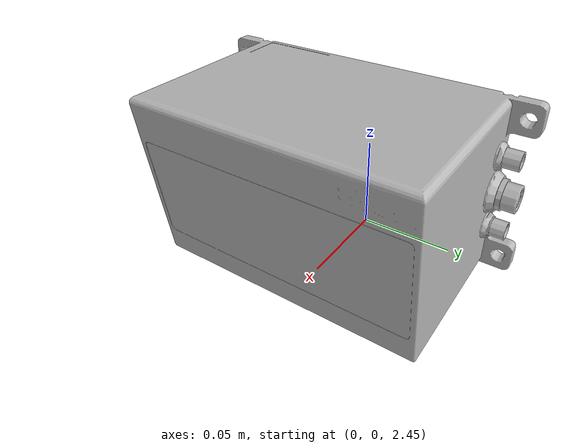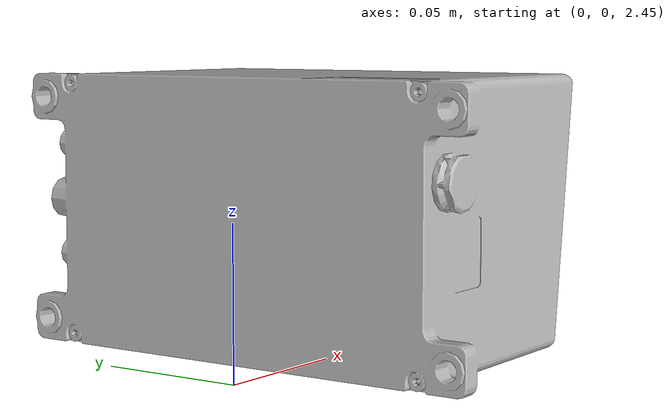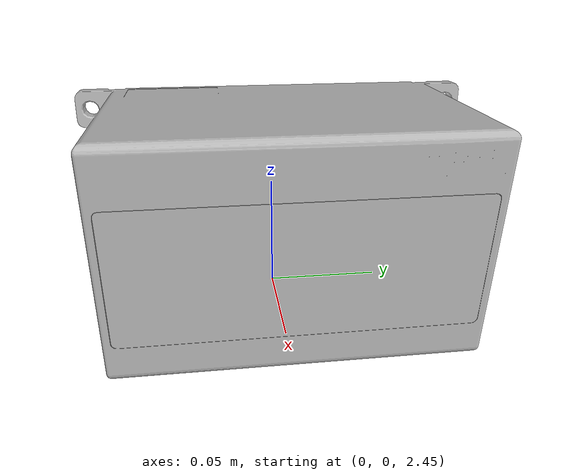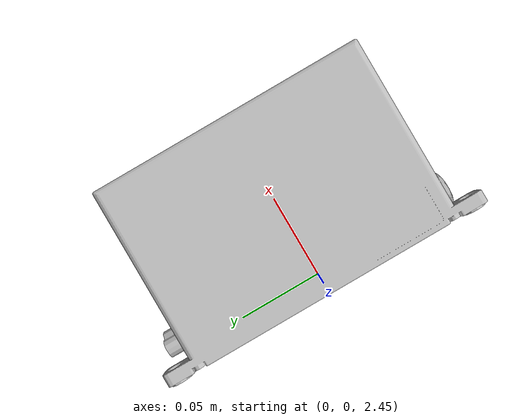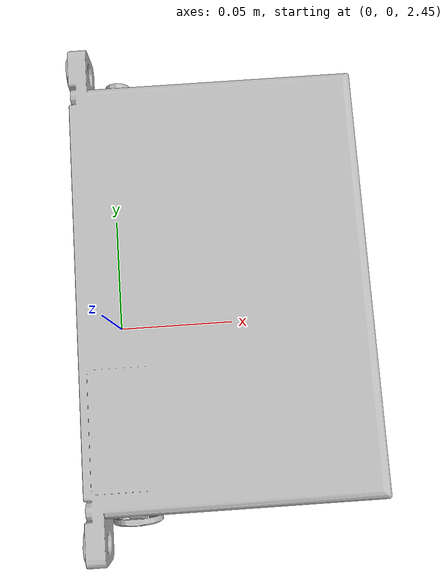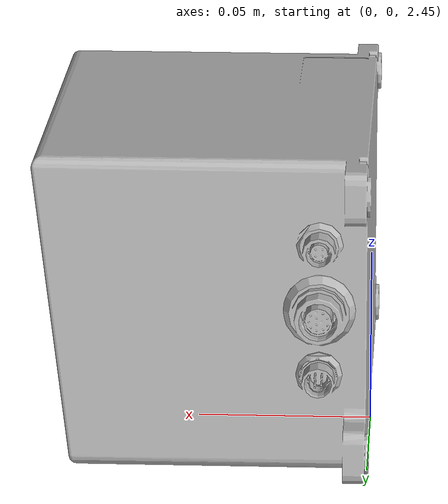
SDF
<?xml version="1.0"?>
<sdf version="1.4">
  <model name="IBEO1">
    <pose>0 0 2.5 0 0 0 </pose>
    <link name="link">
      <gravity>0</gravity>
      <visual name='visual'>
	<pose>0 0 0 1.57 0 1.57 </pose>
	<geometry>
	  <mesh>
	    <uri>model://IBEO/meshes/IBEO.STL </uri>
	  </mesh>
	</geometry>
      </visual>

      <sensor name='ibeo-t1' type='gpu_ray'>
	<pose>0.01 0.04 0.005 0 -0.014 0</pose>
	<ray>
	  <scan>
	    <horizontal>
	      <samples>760</samples>
	      <resolution>1</resolution>
	      <min_angle>-1.04719</min_angle>
	      <max_angle>0.69813</max_angle>
	    </horizontal>
	  </scan>
	  <range>
	    <min>0.3</min>
	    <max>35</max>
	    <resolution>1</resolution>
	  </range>

	</ray>
	<always_on>1</always_on>
	<update_rate>1000</update_rate>
	<visualize>1</visualize>
      </sensor>

      <sensor name='ibeo-t2' type='gpu_ray'>
	<pose>0.01 0.04 0.006 0 -0.028 0</pose>
	<ray>
	  <scan>
	    <horizontal>
	      <samples>760</samples>
	      <resolution>1</resolution>
	      <min_angle>-1.04719</min_angle>
	      <max_angle>0.69813</max_angle>
	    </horizontal>
	  </scan>
	  <range>
	    <min>0.3</min>
	    <max>35</max>
	    <resolution>1</resolution>
	  </range>

	</ray>
	<always_on>1</always_on>
	<update_rate>1000</update_rate>
	<visualize>1</visualize>
      </sensor>

      <sensor name='ibeo-b1' type='gpu_ray'>
	<pose>0.01 0.04 0.007 0 0.014 0</pose>
	<ray>
	  <scan>
	    <horizontal>
	      <samples>760</samples>
	      <resolution>1</resolution>
	      <min_angle>-0.872661</min_angle>
	      <max_angle>0.872661</max_angle>
	    </horizontal>
	  </scan>
	  <range>
	    <min>0.3</min>
	    <max>35</max>
	    <resolution>1</resolution>
	  </range>
	  <noise>
	    <type>gaussian</type>
	    <mean>0.0</mean>
	    <stddev>0.007</stddev>
	  </noise>
	</ray>
	<always_on>1</always_on>
	<update_rate>1000</update_rate>
	<visualize>1</visualize>
      </sensor>

      <sensor name='ibeo-b2' type='gpu_ray'>
	<pose>0.01 0.04 0.008 0 0.028 0</pose>
	<ray>
	  <scan>
	    <horizontal>
	      <samples>760</samples>
	      <resolution>1</resolution>
	      <min_angle>-0.872661</min_angle>
	      <max_angle>0.872661</max_angle>
	    </horizontal>
	  </scan>
	  <range>
	    <min>0.3</min>
	    <max>35</max>
	    <resolution>1</resolution>
	  </range>
	  <noise>
	    <type>gaussian</type>
	    <mean>0.0</mean>
	    <stddev>0.007</stddev>
	  </noise>
	</ray>
	<always_on>1</always_on>
	<update_rate>1000</update_rate>
	<visualize>1</visualize>
      </sensor>

    </link>
  <plugin name="IBEOPLUGIN" filename="libibeo_gpu.so"/>
  </model>
</sdf>
